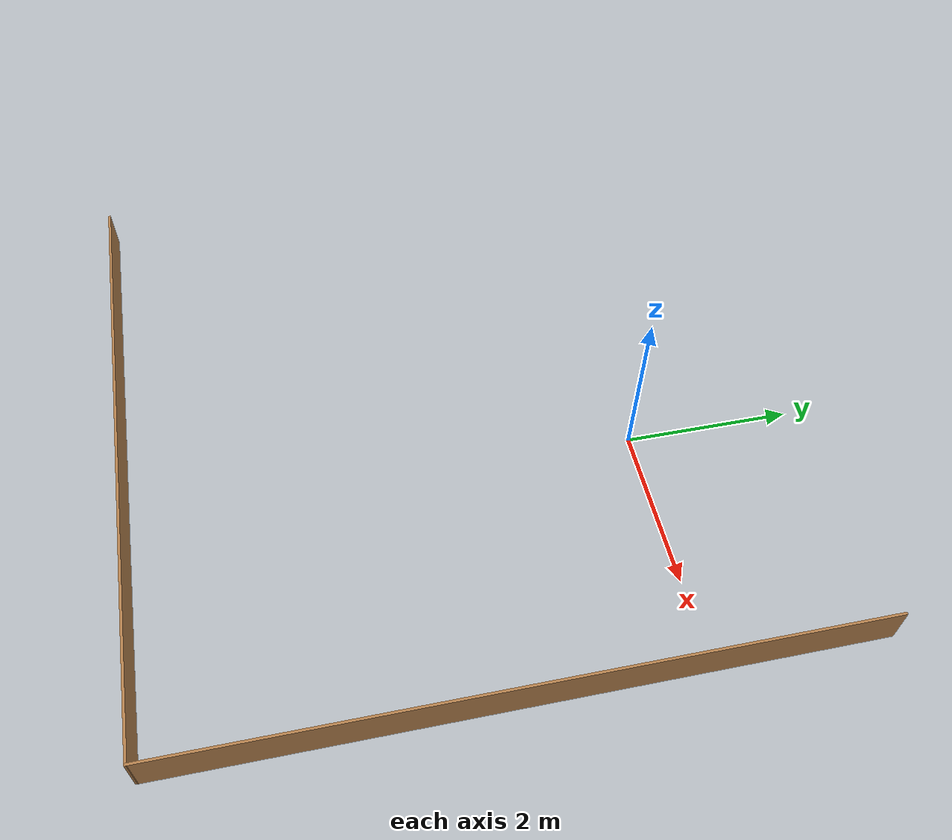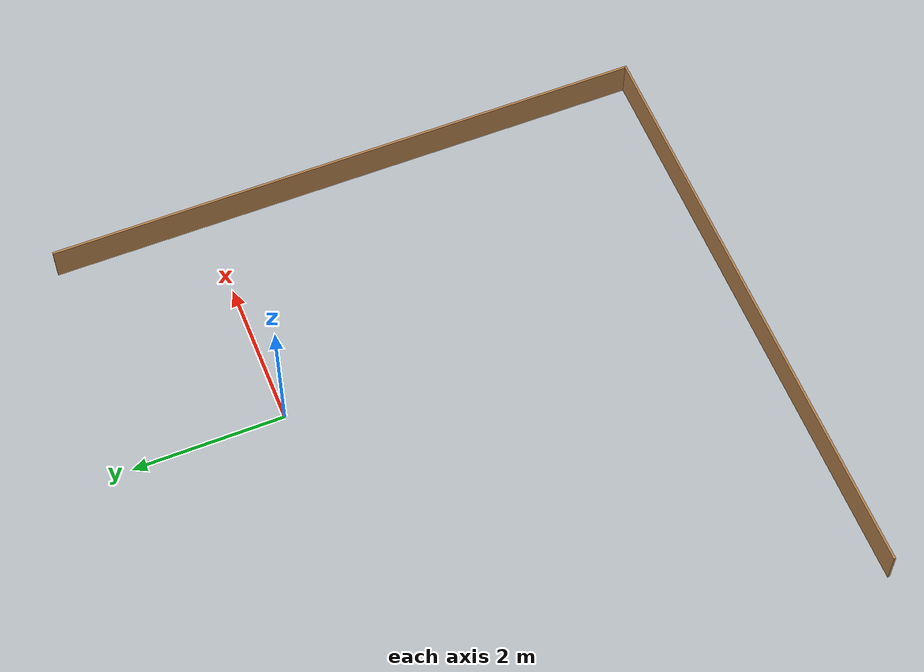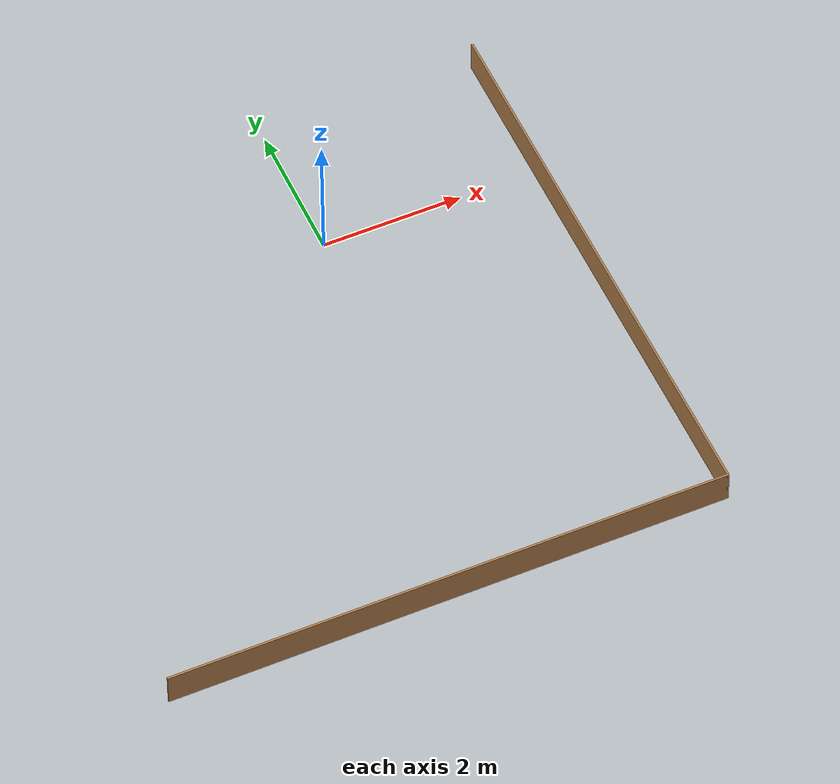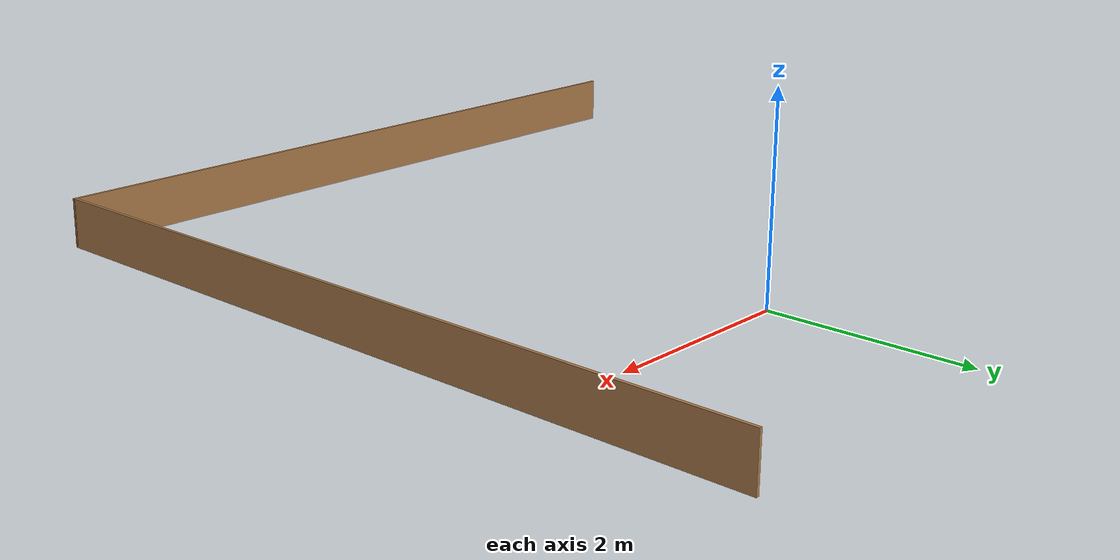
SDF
<sdf version="1.7">
 <model name="arena">
  <pose>-0.8295 -1.99377 0 0 -0 0</pose>
  <link name="Wall_2">
   <collision name="Wall_2_Collision">
    <geometry><box><size>8.03201 0.03 0.5</size></box></geometry>
    <pose>0 0 0.25 0 -0 0</pose>
   </collision>
   <visual name="Wall_2_Visual">
    <pose>0 0 0.25 0 -0 0</pose>
    <geometry><box><size>8.03201 0.03 0.5</size></box></geometry>
    <material>
     <script><uri>file://media/materials/scripts/gazebo.material</uri><name>Gazebo/Wood</name></script>
     <ambient>1 1 1 1</ambient>
    </material>
    <meta><layer>0</layer></meta>
   </visual>
   <pose>3.925 -0.002226 0 0 -0 -1.56942</pose>
  </link>
  <link name="Wall_3">
   <collision name="Wall_3_Collision">
    <geometry><box><size>7.88 0.03 0.5</size></box></geometry>
    <pose>0 0 0.25 0 -0 0</pose>
   </collision>
   <visual name="Wall_3_Visual">
    <pose>0 0 0.25 0 -0 0</pose>
    <geometry><box><size>7.88 0.03 0.5</size></box></geometry>
    <material>
     <script><uri>file://media/materials/scripts/gazebo.material</uri><name>Gazebo/Wood</name></script>
     <ambient>1 1 1 1</ambient>
    </material>
    <meta><layer>0</layer></meta>
   </visual>
   <pose>0.0055 -4.00323 0 0 -0 3.14159</pose>
  </link>
  <static>1</static>
 </model>
</sdf>
